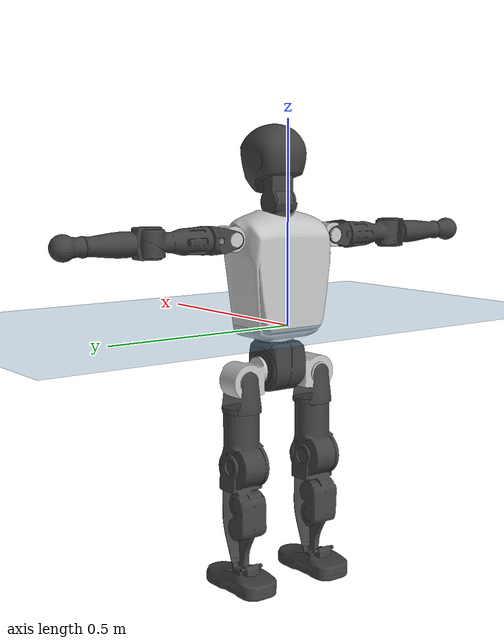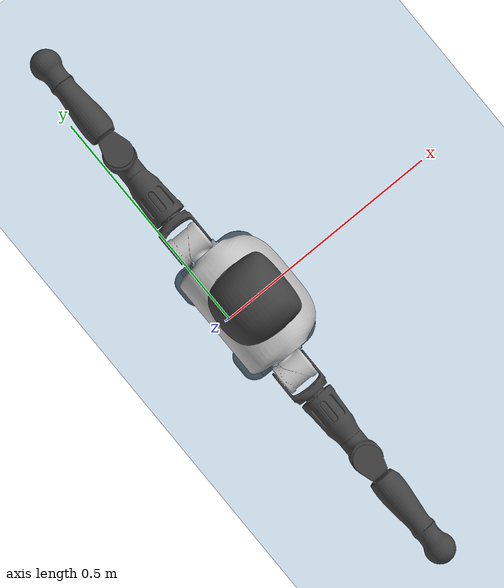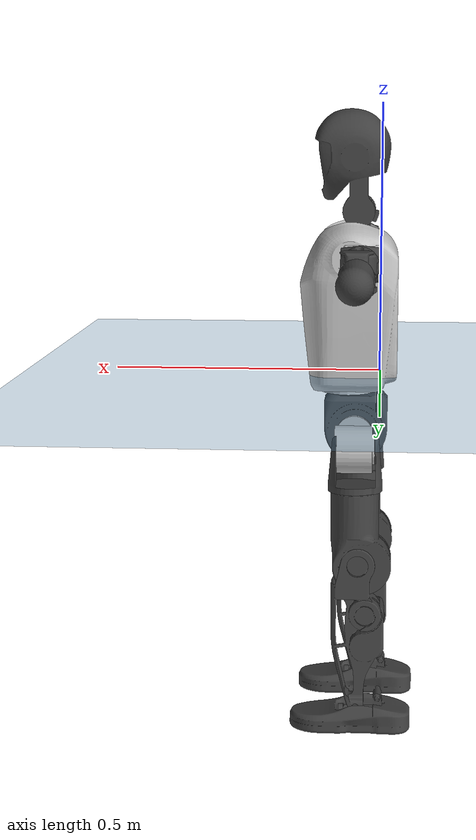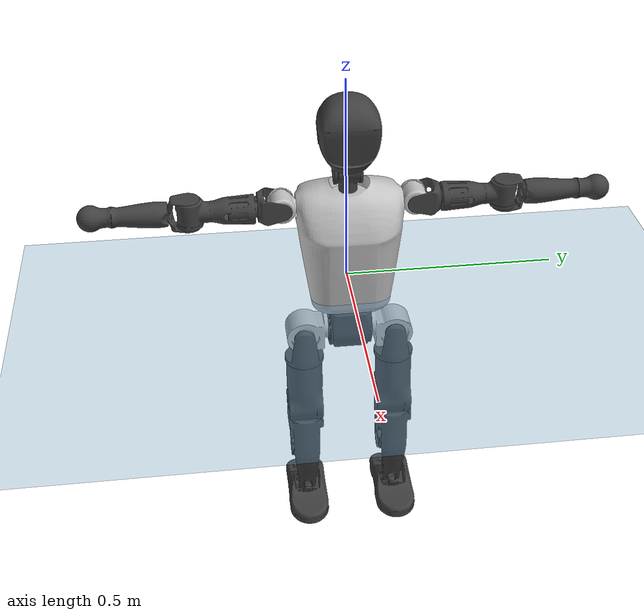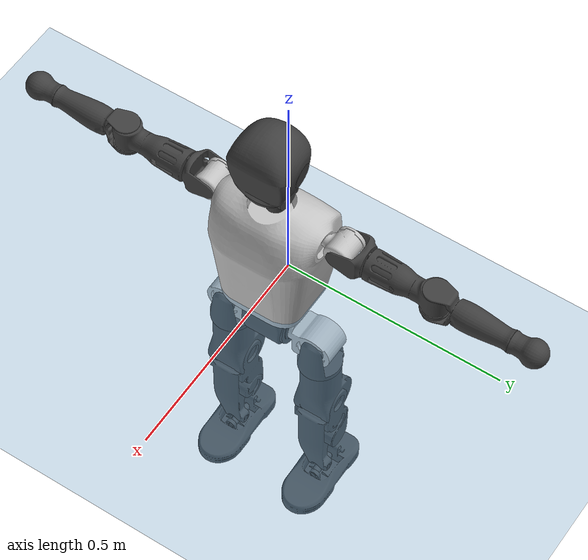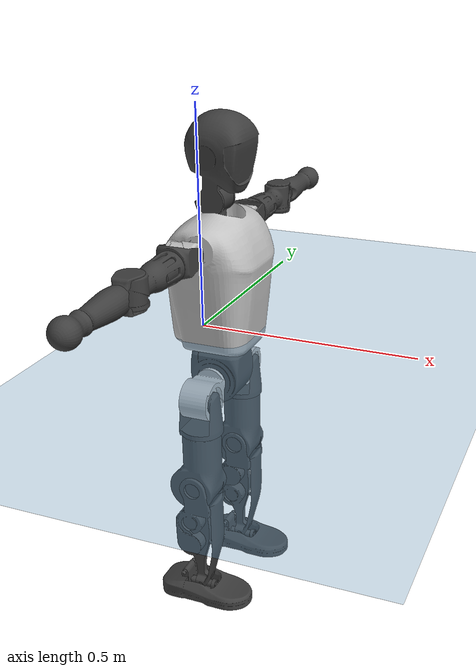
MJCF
<mujoco model="T1">
  <compiler angle="radian" assetdir="assets" balanceinertia="true" inertiafromgeom="false"/>

  <option timestep="0.005" density="1.2" viscosity="2e-05"/>

  <size nkey="1"/>

  <visual>
    <quality shadowsize="8192"/>
    <map shadowclip="0.5"/>
  </visual>

  <default>
    <default class="/">
      <joint armature="0.01" damping="0.01" frictionloss="0.1"/>
      <geom contype="0" conaffinity="0" group="1" solref="-1000 -80"/>
      <site size="0.01 0.005 0.005" group="5"/>
      <general forcelimited="true" biastype="affine" gainprm="25" biasprm="0 -25 -0.6"/>
      <default class="t1">
        <geom rgba="0.25 0.25 0.25 1"/>
        <default class="visual">
          <geom type="mesh" group="2"/>
        </default>
        <default class="collision">
          <geom group="3"/>
        </default>
        <default class="foot">
          <geom size="0.1115 0.05 0.015" type="box" condim="6" group="4" priority="1" solimp="0.015 1 0.015"/>
        </default>
        <default class="reward_collision_sphere">
          <geom group="5" rgba="1 0 0 1"/>
        </default>
      </default>
    </default>
  </default>

  <asset>
    <texture type="skybox" colorspace="auto" name="//unnamed_texture_0" builtin="gradient" rgb1="0.95 0.95 0.95" rgb2="0.95 0.95 0.95" width="100" height="600"/>
    <texture type="2d" colorspace="auto" name="texplane" builtin="checker" rgb1="0.345 0.575 0.748" rgb2="0.345 0.575 0.748" markrgb="1 1 1" width="512" height="512"/>
    <material name="MatPlane" class="/" texture="texplane" texuniform="true" texrepeat="2 2" specular="0.9"/>
    <mesh name="Trunk" class="/" file="Trunk.stl"/>
    <mesh name="H1" class="/" file="H1.stl"/>
    <mesh name="H2" class="/" file="H2.stl"/>
    <mesh name="AL1" class="/" file="AL1.stl"/>
    <mesh name="AL2" class="/" file="AL2.stl"/>
    <mesh name="AL3" class="/" file="AL3.stl"/>
    <mesh name="left_hand_link" class="/" file="left_hand_link.stl"/>
    <mesh name="AR1" class="/" file="AR1.stl"/>
    <mesh name="AR2" class="/" file="AR2.stl"/>
    <mesh name="AR3" class="/" file="AR3.stl"/>
    <mesh name="right_hand_link" class="/" file="right_hand_link.stl"/>
    <mesh name="Waist" class="/" file="Waist.stl"/>
    <mesh name="Hip_Pitch_Left" class="/" file="Hip_Pitch_Left.stl"/>
    <mesh name="Hip_Roll_Left" class="/" file="Hip_Roll_Left.stl"/>
    <mesh name="Hip_Yaw_Left" class="/" file="Hip_Yaw_Left.stl"/>
    <mesh name="Shank_Left" class="/" file="Shank_Left.stl"/>
    <mesh name="Ankle_Cross_Left" class="/" file="Ankle_Cross_Left.stl"/>
    <mesh name="left_foot_link" class="/" file="left_foot_link.stl"/>
    <mesh name="Hip_Pitch_Right" class="/" file="Hip_Pitch_Right.stl"/>
    <mesh name="Hip_Roll_Right" class="/" file="Hip_Roll_Right.stl"/>
    <mesh name="Hip_Yaw_Right" class="/" file="Hip_Yaw_Right.stl"/>
    <mesh name="Shank_Right" class="/" file="Shank_Right.stl"/>
    <mesh name="Ankle_Cross_Right" class="/" file="Ankle_Cross_Right.stl"/>
    <mesh name="right_foot_link" class="/" file="right_foot_link.stl"/>
  </asset>

  <worldbody>
    <geom name="floor" class="/" size="100 100 0.125" type="plane" group="0" material="MatPlane"/>
    <light name="toplight_shadow" class="/" pos="0 0 5" dir="0.0990148 0.0990148 -0.990148" type="directional" ambient="0.04 0.04 0.04" diffuse="0.55 0.55 0.55" specular="0.12 0.12 0.12"/>
    <light name="toplight_fill" class="/" pos="0 0 5" dir="0.0990148 0.0990148 -0.990148" type="directional" castshadow="false" ambient="0.04 0.04 0.04" diffuse="0.3 0.3 0.3" specular="0.08 0.08 0.08"/>
    <body name="trunk" childclass="t1" pos="-0.00275708 -0.00158996 0.00273637" quat="0.999999 -0.000603939 0.00116564 0.000141183">
      <inertial pos="0.0380133 -0.00320945 0.105439" quat="0.99995 -0.00190773 -0.00880181 -0.0043041" mass="8.7157" diaginertia="0.0155692 0.0890203 0.0505663"/>
      <joint name="//unnamed_joint_0" type="free" armature="0" damping="0" frictionloss="0"/>
      <geom name="//unnamed_geom_1" class="visual" rgba="0.76 0.76 0.76 1" mesh="Trunk"/>
      <geom name="//unnamed_geom_2" class="collision" size="0.0673613 0.089815 0.134723" pos="0.0417097 0 0.117218" type="box"/>
      <geom name="//unnamed_geom_3" class="reward_collision_sphere" size="0.103287" pos="0.0417097 0 0.0976815"/>
      <geom name="//unnamed_geom_4" class="reward_collision_sphere" size="0.0134723" pos="0.0417097 0.0869103 0"/>
      <geom name="//unnamed_geom_5" class="reward_collision_sphere" size="0.0134723" pos="0.0417097 -0.0869103 0"/>
      <geom name="//unnamed_geom_6" class="reward_collision_sphere" size="0.0134723" pos="0.0417097 0.109405 0.175827"/>
      <geom name="//unnamed_geom_7" class="reward_collision_sphere" size="0.0134723" pos="0.0417097 -0.109405 0.175827"/>
      <site name="imu" pos="-0.0124052 -0.00359904 -0.00480659" size="0.0089815"/>
      <camera name="track" pos="0 -2.04495 0" quat="0.707107 0.707107 0 0" mode="trackcom"/>
      <camera name="ego_camera" pos="0.0848097 0 0.410262" quat="-0.5 -0.5 0.5 0.5"/>
      <body name="H1" pos="0.0438969 -0.000624601 0.237236" quat="0.999999 -7.49931e-05 0.00128835 -0.000258899">
        <inertial pos="0.00163992 -0.00216779 0.0586764" quat="0.765642 -0.0170517 0.00142039 0.64304" mass="0.330944" diaginertia="4.04947e-05 0.000261978 0.000131619"/>
        <joint name="AAHead_yaw" pos="0 0 0" axis="-0.00260712 -0.00115876 0.999996" range="-1.61894 1.58583" armature="0.0102324" damping="0.0112313" frictionloss="0.0800486"/>
        <geom name="//unnamed_geom_8" class="visual" mesh="H1"/>
        <body name="H2" pos="0.000889276 -0.000979718 0.0603636" quat="1 -2.45991e-06 -5.91771e-07 7.50212e-06">
          <inertial pos="0.00452748 0.00135327 0.0964094" quat="0.987461 0.109091 -0.0789563 -0.0823723" mass="0.446898" diaginertia="0.00031967 0.0021279 0.00151373"/>
          <joint name="Head_pitch" pos="0 0 0" axis="-0.00804847 -0.999962 0.00328826" range="-1.23904 0.404835" armature="0.00948182" damping="0.00802167" frictionloss="0.0777575"/>
          <geom name="//unnamed_geom_9" class="visual" mesh="H2"/>
          <geom name="//unnamed_geom_10" class="collision" size="0.071852" pos="0.00695161 0 0.10745"/>
          <geom name="//unnamed_geom_11" class="reward_collision_sphere" size="0.0808335" pos="0.0139032 0 0.0976815"/>
        </body>
      </body>
      <body name="AL1" pos="0.0379002 0.1072 0.21508" quat="0.999999 -0.000714436 0.00139482 -0.000197863">
        <inertial pos="-0.000235345 0.0478575 0.000213057" quat="0.503286 0.49594 -0.504564 0.496147" mass="0.377947" diaginertia="0.000220633 0.00142644 0.000252681"/>
        <joint name="Left_Shoulder_Pitch" pos="0 0 0" axis="-0.00113388 0.999988 -0.00485846" stiffness="0.0156323" range="-3.3107 1.16675" armature="0.00801069" damping="0.00694903" frictionloss="0.0917666"/>
        <geom name="//unnamed_geom_12" class="visual" rgba="0.76 0.76 0.76 1" mesh="AL1"/>
        <body name="AL2" pos="-0.000854126 0.0470914 -0.00156971" quat="1 -6.895e-05 -0.000746384 0.000412167">
          <inertial pos="0.00129386 0.0398141 0.00025535" quat="0.487921 0.511531 -0.488151 0.511838" mass="0.115897" diaginertia="6.47386e-05 0.000375246 0.000157157"/>
          <joint name="Left_Shoulder_Roll" pos="0 0 0" axis="-0.999999 0.00143915 0.000314408" stiffness="0.00784707" range="-1.56264 1.69741" armature="0.00765098" damping="0.0109554" frictionloss="0.0926227"/>
          <geom name="//unnamed_geom_13" class="visual" mesh="AL2"/>
          <body name="AL3" pos="0.00260709 0.0612028 0.000479712" quat="1 -4.22049e-06 -9.94412e-06 7.48233e-06">
            <inertial pos="0.000193706 0.0859516 -0.00283545" quat="0.714329 0.699772 -0.00346118 0.00632311" mass="0.702424" diaginertia="0.0019933 0.0140015 0.000537269"/>
            <joint name="Left_Elbow_Pitch" pos="0 0 0" axis="-0.00809689 -0.999967 -0.000781714" range="-2.29393 2.27622" armature="0.00915705" damping="0.00691491" frictionloss="0.0983189"/>
            <geom name="//unnamed_geom_14" class="visual" mesh="AL3"/>
            <geom name="//unnamed_geom_15" class="collision" size="0.0269445 0.0673613" pos="0 0.0511237 0" quat="0.707105 0.707108 0 0" type="cylinder"/>
            <geom name="//unnamed_geom_16" class="reward_collision_sphere" size="0.0323334"/>
            <body name="left_hand_link" pos="0.00308844 0.150441 0.000652919" quat="0.999999 0.000491861 -0.00103457 0.000229982">
              <inertial pos="3.05637e-05 0.111187 -0.00109153" quat="0.70796 0.706251 0.00135389 -0.000606572" mass="0.244301" diaginertia="0.0013664 0.00897068 0.000194481"/>
              <joint name="Left_Elbow_Yaw" pos="0 0 0" axis="0.0141622 -0.00722323 0.999874" stiffness="0.0073436" range="-2.43892 -0.0216985" armature="0.00800273" damping="0.00793364" frictionloss="0.101642"/>
              <geom name="//unnamed_geom_17" class="visual" mesh="left_hand_link"/>
              <geom name="//unnamed_geom_18" class="collision" size="0.0269445 0.0785881" pos="0 0.132922 0" quat="0.707105 0.707108 0 0" type="cylinder"/>
              <geom name="//unnamed_geom_19" class="reward_collision_sphere" size="0.0449075"/>
              <geom name="//unnamed_geom_20" class="reward_collision_sphere" size="0.0314353" pos="0 0.112472 0"/>
              <geom name="//unnamed_geom_21" class="reward_collision_sphere" size="0.0314353" pos="0 0.219832 0"/>
            </body>
          </body>
        </body>
      </body>
      <body name="AR1" pos="0.038542 -0.104668 0.213348" quat="1 -0.000366365 -0.000602536 -0.0005953">
        <inertial pos="-0.00227746 -0.0466071 0.000351354" quat="0.504506 0.494205 -0.508028 0.493096" mass="0.384575" diaginertia="0.000221294 0.00146594 0.000271679"/>
        <joint name="Right_Shoulder_Pitch" pos="0 0 0" axis="-0.000151944 -0.999999 0.00109268" stiffness="0.00714903" range="-1.27031 3.30569" armature="0.00784597" damping="0.0189782" frictionloss="0.0966634"/>
        <geom name="//unnamed_geom_22" class="visual" rgba="0.76 0.76 0.76 1" mesh="AR1"/>
        <body name="AR2" pos="-0.00136593 -0.0460193 -0.000131366" quat="1 -2.69048e-05 0.000177502 -0.000311727">
          <inertial pos="0.00120737 -0.0385637 0.000121117" quat="0.501018 0.495468 -0.511927 0.491348" mass="0.123191" diaginertia="6.49705e-05 0.000396338 0.000159135"/>
          <joint name="Right_Shoulder_Roll" pos="0 0 0" axis="-1 -0.000138202 -4.11023e-05" range="-1.78388 1.58686" armature="0.00905307" damping="0.00283904" frictionloss="0.0920342"/>
          <geom name="//unnamed_geom_23" class="visual" mesh="AR2"/>
          <body name="AR3" pos="0.00185716 -0.0619129 -0.00338674" quat="1 -8.49195e-06 -1.07618e-05 -1.59507e-05">
            <inertial pos="0.00235609 -0.0900063 -0.000669793" quat="0.707499 0.706714 -0.000787782 0.000401287" mass="0.75701" diaginertia="0.0021571 0.0151561 0.000589312"/>
            <joint name="Right_Elbow_Pitch" pos="0 0 0" axis="0.000742256 0.999918 -0.0128066" range="-2.27982 2.25638" armature="0.00908556" damping="0.00913529" frictionloss="0.0875637"/>
            <geom name="//unnamed_geom_24" class="visual" mesh="AR3"/>
            <geom name="//unnamed_geom_25" class="collision" size="0.0269445 0.0673613" pos="0 -0.0511237 0" quat="0.707105 0.707108 0 0" type="cylinder"/>
            <geom name="//unnamed_geom_26" class="reward_collision_sphere" size="0.0323334"/>
            <body name="right_hand_link" pos="-0.00116199 -0.150213 -0.000936916" quat="0.999999 -0.00062148 -0.000179631 -0.0010674">
              <inertial pos="-0.00191697 -0.111144 0.00126103" quat="0.705585 0.708623 0.00144891 0.00118309" mass="0.234033" diaginertia="0.00132399 0.00908343 0.000198566"/>
              <joint name="Right_Elbow_Yaw" pos="0 0 0" axis="0.00907085 0.00159646 0.999958" stiffness="0.00155744" range="-0.00830578 2.42991" armature="0.00843887" damping="0" frictionloss="0.0997032"/>
              <geom name="//unnamed_geom_27" class="visual" mesh="right_hand_link"/>
              <geom name="//unnamed_geom_28" class="collision" size="0.0269445 0.0785881" pos="0 -0.132922 0" quat="0.707105 0.707108 0 0" type="cylinder"/>
              <geom name="//unnamed_geom_29" class="reward_collision_sphere" size="0.0449075"/>
              <geom name="//unnamed_geom_30" class="reward_collision_sphere" size="0.0314353" pos="0 -0.112472 0"/>
              <geom name="//unnamed_geom_31" class="reward_collision_sphere" size="0.0314353" pos="0 -0.219832 0"/>
            </body>
          </body>
        </body>
      </body>
      <body name="Waist" pos="0.0472548 0.00130013 -0.111784" quat="0.999999 0.00123766 4.10291e-05 -0.000222815">
        <inertial pos="0.00337338 -0.0016988 0.0099764" quat="0.983401 0.00435654 -0.180703 0.0157964" mass="1.80509" diaginertia="0.000851255 0.00592161 0.00420294"/>
        <joint name="Waist" pos="0 0 0" axis="0.00498763 0.00354825 0.999981" stiffness="0.0106057" range="-1.56591 1.5811" armature="0.010155" damping="0.01149" frictionloss="0.0843092"/>
        <geom name="//unnamed_geom_32" class="visual" mesh="Waist"/>
        <body name="Hip_Pitch_Left" pos="0.00206366 0.108468 -0.00300255" quat="0.999999 -0.000339822 5.72866e-05 -0.00158064">
          <inertial pos="0.000124672 -0.00487005 -0.0183973" quat="0.975092 0.22124 0.0157882 0.000199554" mass="0.756057" diaginertia="0.000288434 0.00160513 0.00114533"/>
          <joint name="Left_Hip_Pitch" pos="0 0 0" axis="0.00483513 0.999831 0.0177161" stiffness="0.00340668" range="-1.79679 1.58231" armature="0.00913292" damping="0.00678543" frictionloss="0.0850584"/>
          <geom name="//unnamed_geom_33" class="visual" rgba="0.76 0.76 0.76 1" mesh="Hip_Pitch_Left"/>
          <body name="Hip_Roll_Left" pos="-0.000705236 0.00189272 -0.0193829" quat="0.999999 0.000616985 -0.000534301 0.000831329">
            <inertial pos="-0.00149534 0.00142958 -0.0516525" quat="0.714203 -0.0079745 -0.00869155 0.699839" mass="0.292507" diaginertia="0.000286518 0.00168941 0.000464676"/>
            <joint name="Left_Hip_Roll" pos="0 0 0" axis="-0.99993 -0.00910945 0.0074912" range="-1.54762 0.257235" armature="0.00847549" damping="0.0154506" frictionloss="0.0801636"/>
            <geom name="//unnamed_geom_34" class="visual" mesh="Hip_Roll_Left"/>
            <geom name="//unnamed_geom_35" class="reward_collision_sphere" size="0.0493983"/>
            <body name="Hip_Yaw_Left" pos="-0.00203891 0.00122513 -0.0787484" quat="1 0.00031416 0.000646387 0.000381877">
              <inertial pos="-0.00420521 0.000101487 -0.0876738" quat="0.696593 -0.0342122 -0.0313959 0.715962" mass="1.48404" diaginertia="0.00401016 0.0276138 0.002152"/>
              <joint name="Left_Hip_Yaw" pos="0 0 0" axis="0.00181045 0.00133338 -0.999997" range="-0.949625 0.971081" armature="0.00903377" damping="0.0175536" frictionloss="0.0856618"/>
              <geom name="//unnamed_geom_36" class="visual" mesh="Hip_Yaw_Left"/>
              <geom name="//unnamed_geom_37" class="collision" size="0.0449075 0.071852" type="cylinder"/>
              <body name="Shank_Left" pos="-0.00655461 0.000190371 -0.132307" quat="1 8.80143e-06 9.55684e-05 -0.000132103">
                <inertial pos="-0.00261478 0.000548842 -0.121686" quat="0.997515 0.00176654 -0.0258381 0.0655271" mass="1.26786" diaginertia="0.00563022 0.0386413 0.00165535"/>
                <joint name="Left_Knee_Pitch" pos="0 0 0" axis="-0.00783049 0.999959 -0.00464907" range="0.0534687 2.34691" armature="0.0101512" damping="0.0239777" frictionloss="0.0831209"/>
                <geom name="//unnamed_geom_38" class="visual" mesh="Shank_Left"/>
                <geom name="//unnamed_geom_39" class="collision" size="0.0449075 0.0673613" pos="0 0 -0.117218" type="cylinder"/>
                <geom name="//unnamed_geom_40" class="reward_collision_sphere" size="0.0583798"/>
                <body name="Ankle_Cross_Left" pos="0.00284546 0.00130813 -0.275964" quat="1 7.03637e-05 0.000126987 3.5319e-05">
                  <inertial pos="-0.00179098 0.000529735 -0.00517761" quat="0.438156 0.552449 0.552524 0.44445" mass="0.05221" diaginertia="4.88385e-06 2.9344e-05 1.02101e-05"/>
                  <joint name="Left_Ankle_Pitch" pos="0 0 0" axis="-0.00103791 0.999999 0.000212935" stiffness="0.00428807" range="-0.924338 0.310252" armature="0.00905551" damping="0.0147728" frictionloss="0.0772775"/>
                  <geom name="//unnamed_geom_41" class="visual" mesh="Ankle_Cross_Left"/>
                  <body name="left_foot_link" pos="0.000236661 0.00237788 -0.0120644" quat="1 0.000146319 0.000208648 -1.24065e-05">
                    <inertial pos="0.000247678 -0.00112551 -0.0115889" quat="0.00212457 0.617323 0.0056522 0.786687" mass="0.515916" diaginertia="0.00045264 0.00276266 0.00196797"/>
                    <joint name="Left_Ankle_Roll" pos="0 0 0" axis="-0.999909 0.00261138 0.0132432" range="-0.428744 0.386554" armature="0.00902389" damping="0" frictionloss="0.101767"/>
                    <geom name="//unnamed_geom_42" class="visual" mesh="left_foot_link"/>
                    <geom name="left_foot" class="foot" size="0.105493 0.0404019 0.0140929" pos="0.00695161 0 -0.0146522"/>
                    <geom name="//unnamed_geom_44" class="reward_collision_sphere" size="0.0467038" pos="0.00695161 0 -0.0146522"/>
                    <geom name="//unnamed_geom_45" class="reward_collision_sphere" size="0.0269445" pos="0.0660403 -0.0235169 -0.0146522"/>
                    <geom name="//unnamed_geom_46" class="reward_collision_sphere" size="0.0269445" pos="-0.0486613 -0.0235169 -0.0146522"/>
                    <site name="left_foot" class="foot" pos="0.00695161 0 -0.0146522" size="0.0089815"/>
                  </body>
                </body>
              </body>
            </body>
          </body>
        </body>
        <body name="Hip_Pitch_Right" pos="-0.00208096 -0.108367 -0.00160557" quat="0.999999 0.000848883 -0.000974016 -0.000360328">
          <inertial pos="-0.00237103 0.00539688 -0.0160631" quat="0.973716 -0.227312 0.0125865 -0.006873" mass="0.737479" diaginertia="0.000302513 0.00170035 0.00112715"/>
          <joint name="Right_Hip_Pitch" pos="0 0 0" axis="0.00138598 -0.999928 -0.0119433" range="-1.57641 1.80993" armature="0.00922772" damping="0" frictionloss="0.0991505"/>
          <geom name="//unnamed_geom_47" class="visual" rgba="0.76 0.76 0.76 1" mesh="Hip_Pitch_Right"/>
          <body name="Hip_Roll_Right" pos="0.000848227 -0.0020988 -0.0220827" quat="1 2.84758e-07 -0.000123818 5.47093e-05">
            <inertial pos="-0.000120999 -0.00293495 -0.0541164" quat="0.714731 -0.0114082 -0.0123843 0.699196" mass="0.285798" diaginertia="0.000285679 0.00171254 0.000447326"/>
            <joint name="Right_Hip_Roll" pos="0 0 0" axis="-0.999997 0.00232621 -0.00116635" stiffness="0.00341169" range="-0.25243 1.54478" armature="0.0103233" damping="0.0142685" frictionloss="0.0774371"/>
            <geom name="//unnamed_geom_48" class="visual" mesh="Hip_Roll_Right"/>
            <geom name="//unnamed_geom_49" class="reward_collision_sphere" size="0.0493983"/>
            <body name="Hip_Yaw_Right" pos="-0.00221186 -0.000398304 -0.0806718" quat="1 0.000103221 -1.54136e-05 4.08589e-05">
              <inertial pos="-0.00486231 -0.0011975 -0.0874292" quat="0.712501 -0.0260265 -0.034316 0.700349" mass="1.56336" diaginertia="0.0041175 0.029 0.00228904"/>
              <joint name="Right_Hip_Yaw" pos="0 0 0" axis="0.00294706 -0.00234335 -0.999993" range="-1.02052 1.00672" armature="0.00920449" damping="0" frictionloss="0.0840859"/>
              <geom name="//unnamed_geom_50" class="visual" mesh="Hip_Yaw_Right"/>
              <geom name="//unnamed_geom_51" class="collision" size="0.0449075 0.071852" type="cylinder"/>
              <body name="Shank_Right" pos="-0.00954455 -0.000915234 -0.13385" quat="1 -4.03059e-06 -1.41678e-05 -1.19829e-05">
                <inertial pos="-0.00454423 -0.00160525 -0.117294" quat="0.999168 0.00272077 -0.0167921 -0.0370687" mass="1.29084" diaginertia="0.00557182 0.0375283 0.00167906"/>
                <joint name="Right_Knee_Pitch" pos="0 0 0" axis="0.0021787 -0.999988 0.00448811" range="-2.34059 0.000610832" armature="0.00992424" damping="0.0156878" frictionloss="0.102369"/>
                <geom name="//unnamed_geom_52" class="visual" mesh="Shank_Right"/>
                <geom name="//unnamed_geom_53" class="collision" size="0.0449075 0.0673613" pos="0 0 -0.117218" type="cylinder"/>
                <geom name="//unnamed_geom_54" class="reward_collision_sphere" size="0.0583798"/>
                <body name="Ankle_Cross_Right" pos="0.00294671 0.00199324 -0.273567" quat="0.999999 -0.000777208 0.00079463 -2.61123e-07">
                  <inertial pos="-6.69674e-05 0.00272503 -0.00780749" quat="0.446554 0.560174 0.545375 0.435155" mass="0.051617" diaginertia="4.81778e-06 2.84548e-05 9.73959e-06"/>
                  <joint name="Right_Ankle_Pitch" pos="0 0 0" axis="0.000837826 -0.999985 -0.00549085" range="-0.402497 0.853333" armature="0.00975716" damping="0.0154537" frictionloss="0.100474"/>
                  <geom name="//unnamed_geom_55" class="visual" mesh="Ankle_Cross_Right"/>
                  <body name="right_foot_link" pos="-0.00112181 -0.00227124 -0.00990734" quat="1 0.00036974 -0.000183249 -0.000187507">
                    <inertial pos="-0.000480465 0.000432194 -0.00648358" quat="0.00531031 0.617222 -0.00596456 0.786749" mass="0.493023" diaginertia="0.000430769 0.0026824 0.00187379"/>
                    <joint name="Right_Ankle_Roll" pos="0 0 0" axis="-0.999974 0.00713313 0.000984245" range="-0.442329 0.386182" armature="0.010234" damping="0.0152747" frictionloss="0.0889573"/>
                    <geom name="//unnamed_geom_56" class="visual" mesh="right_foot_link"/>
                    <geom name="right_foot" class="foot" size="0.102646 0.0395201 0.0122871" pos="0.00695161 0 -0.0146522"/>
                    <geom name="//unnamed_geom_58" class="reward_collision_sphere" size="0.035926"/>
                    <geom name="//unnamed_geom_59" class="reward_collision_sphere" size="0.0269445" pos="0.00695161 0 -0.0146522"/>
                    <geom name="//unnamed_geom_60" class="reward_collision_sphere" size="0.0269445" pos="0.0660403 0.0235169 -0.0146522"/>
                    <geom name="//unnamed_geom_61" class="reward_collision_sphere" size="0.0269445" pos="-0.0486613 0.0235169 -0.0146522"/>
                    <site name="right_foot" class="foot" pos="0.00695161 0 -0.0146522" size="0.0089815"/>
                  </body>
                </body>
              </body>
            </body>
          </body>
        </body>
      </body>
    </body>
  </worldbody>

  <contact>
    <pair class="/" geom1="floor" geom2="left_foot" name="//unnamed_contact_0"/>
    <pair class="/" geom1="floor" geom2="right_foot" name="//unnamed_contact_1"/>
  </contact>

  <actuator>
    <general name="AAHead_yaw" class="/" joint="AAHead_yaw" forcerange="-6.09116 6.09116" gainprm="21.2345" biasprm="0 -21.2345 -0.541087"/>
    <general name="Head_pitch" class="/" joint="Head_pitch" forcerange="-6.91669 6.91669" gainprm="21.2345" biasprm="0 -21.2345 -0.541087"/>
    <general name="Left_Shoulder_Pitch" class="/" joint="Left_Shoulder_Pitch" forcerange="-15.6166 15.6166" gainprm="21.2345" biasprm="0 -21.2345 -0.541087"/>
    <general name="Left_Shoulder_Roll" class="/" joint="Left_Shoulder_Roll" forcerange="-17.6627 17.6627" gainprm="21.2345" biasprm="0 -21.2345 -0.541087"/>
    <general name="Left_Elbow_Pitch" class="/" joint="Left_Elbow_Pitch" forcerange="-17.2527 17.2527" gainprm="21.2345" biasprm="0 -21.2345 -0.541087"/>
    <general name="Left_Elbow_Yaw" class="/" joint="Left_Elbow_Yaw" forcerange="-15.8064 15.8064" gainprm="21.2345" biasprm="0 -21.2345 -0.541087"/>
    <general name="Right_Shoulder_Pitch" class="/" joint="Right_Shoulder_Pitch" forcerange="-16.0695 16.0695" gainprm="21.2345" biasprm="0 -21.2345 -0.541087"/>
    <general name="Right_Shoulder_Roll" class="/" joint="Right_Shoulder_Roll" forcerange="-17.2236 17.2236" gainprm="21.2345" biasprm="0 -21.2345 -0.541087"/>
    <general name="Right_Elbow_Pitch" class="/" joint="Right_Elbow_Pitch" forcerange="-17.7272 17.7272" gainprm="21.2345" biasprm="0 -21.2345 -0.541087"/>
    <general name="Right_Elbow_Yaw" class="/" joint="Right_Elbow_Yaw" forcerange="-14.958 14.958" gainprm="21.2345" biasprm="0 -21.2345 -0.541087"/>
    <general name="Waist" class="/" joint="Waist" forcerange="-27.0959 27.0959" gainprm="21.2345" biasprm="0 -21.2345 -0.541087"/>
    <general name="Left_Hip_Pitch" class="/" joint="Left_Hip_Pitch" forcerange="-44.2967 44.2967" gainprm="21.2345" biasprm="0 -21.2345 -0.541087"/>
    <general name="Left_Hip_Roll" class="/" joint="Left_Hip_Roll" forcerange="-26.4107 26.4107" gainprm="21.2345" biasprm="0 -21.2345 -0.541087"/>
    <general name="Left_Hip_Yaw" class="/" joint="Left_Hip_Yaw" forcerange="-29.4905 29.4905" gainprm="21.2345" biasprm="0 -21.2345 -0.541087"/>
    <general name="Left_Knee_Pitch" class="/" joint="Left_Knee_Pitch" forcerange="-53.9835 53.9835" gainprm="21.2345" biasprm="0 -21.2345 -0.541087"/>
    <general name="Left_Ankle_Pitch" class="/" joint="Left_Ankle_Pitch" forcerange="-19.3922 19.3922" gainprm="21.2345" biasprm="0 -21.2345 -0.541087"/>
    <general name="Left_Ankle_Roll" class="/" joint="Left_Ankle_Roll" forcerange="-13.3859 13.3859" gainprm="21.2345" biasprm="0 -21.2345 -0.541087"/>
    <general name="Right_Hip_Pitch" class="/" joint="Right_Hip_Pitch" forcerange="-41.5815 41.5815" gainprm="21.2345" biasprm="0 -21.2345 -0.541087"/>
    <general name="Right_Hip_Roll" class="/" joint="Right_Hip_Roll" forcerange="-27.138 27.138" gainprm="21.2345" biasprm="0 -21.2345 -0.541087"/>
    <general name="Right_Hip_Yaw" class="/" joint="Right_Hip_Yaw" forcerange="-25.9034 25.9034" gainprm="21.2345" biasprm="0 -21.2345 -0.541087"/>
    <general name="Right_Knee_Pitch" class="/" joint="Right_Knee_Pitch" forcerange="-48.1296 48.1296" gainprm="21.2345" biasprm="0 -21.2345 -0.541087"/>
    <general name="Right_Ankle_Pitch" class="/" joint="Right_Ankle_Pitch" forcerange="-16.7715 16.7715" gainprm="21.2345" biasprm="0 -21.2345 -0.541087"/>
    <general name="Right_Ankle_Roll" class="/" joint="Right_Ankle_Roll" forcerange="-14.7885 14.7885" gainprm="21.2345" biasprm="0 -21.2345 -0.541087"/>
  </actuator>

  <sensor>
    <gyro site="imu" name="imu_angular_velocity"/>
    <velocimeter site="imu" name="imu_linear_velocity"/>
    <framelinvel objtype="site" objname="left_foot" name="left_foot_global_linear_velocity"/>
    <framelinvel objtype="site" objname="right_foot" name="right_foot_global_linear_velocity"/>
  </sensor>

  <keyframe>
    <key name="home" qpos="0 0 0.6385 1 0 0 0 0 0 0 1.4 0 -0.4 0 -1.4 0 0.4 0 -0.4 0 0 0.8 -0.4 0 0.4 0 0 -0.8 0.4 0"/>
  </keyframe>
</mujoco>
